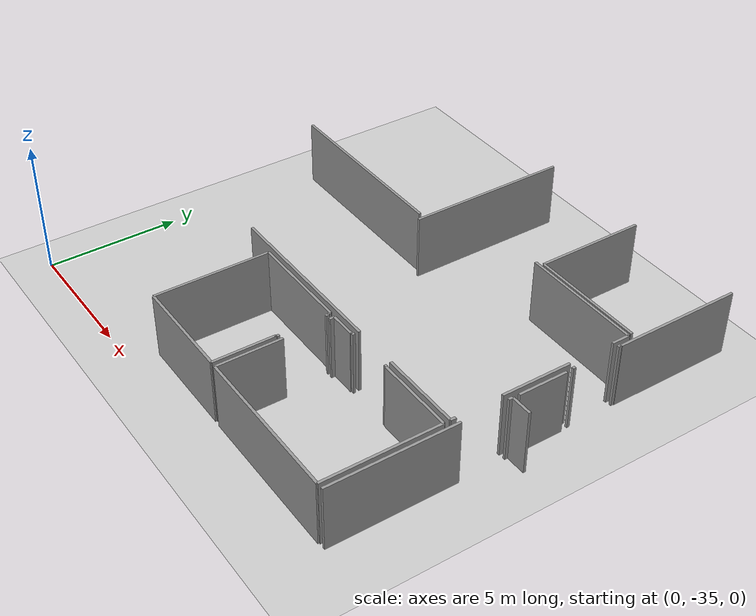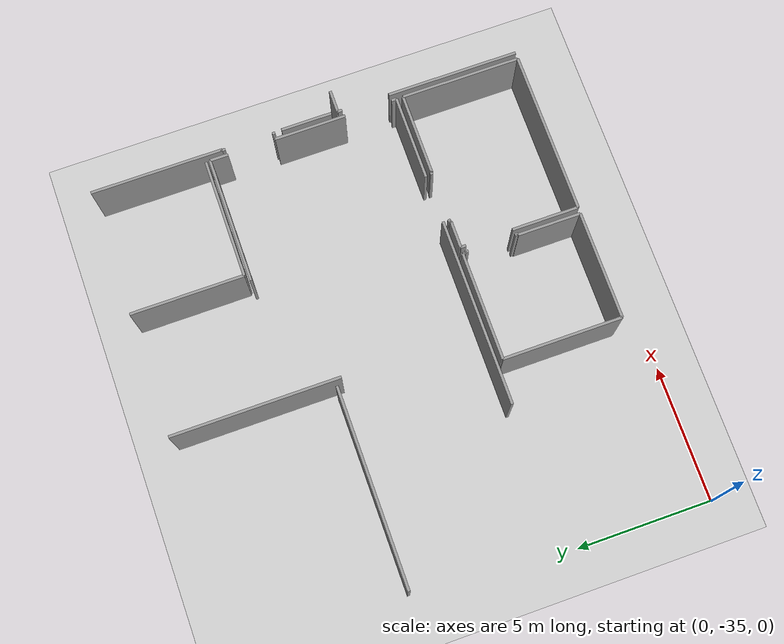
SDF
<sdf version="1.6">
 <world name="default">
  <model name="ground_plane">
   <static>1</static>
   <link name="link">
    <collision name="collision">
     <geometry><plane><normal>0 0 1</normal><size>100 100</size></plane></geometry>
     <surface><friction><ode><mu>100</mu><mu2>50</mu2></ode></friction></surface>
    </collision>
    <visual name="visual">
     <cast_shadows>0</cast_shadows>
     <geometry><plane><normal>0 0 1</normal><size>100 100</size></plane></geometry>
     <material>
      <script><uri>file://media/materials/scripts/gazebo.material</uri><name>Gazebo/Grey</name></script>
     </material>
    </visual>
   </link>
  </model>
  <model name="50041192">
   <static>1</static>
   <link name="Wall_163">
    <collision name="Wall_163_Collision">
     <geometry><box><size>7.26938957096 0.1 2.5</size></box></geometry>
     <pose>3.63469478548 0 1.25 0 0 0</pose>
    </collision>
    <visual name="Wall_163_Visual">
     <pose>3.63469478548 0 1.25 0 0 0</pose>
     <geometry><box><size>7.26938957096 0.1 2.5</size></box></geometry>
     <material>
      <script><uri>file://media/materials/scripts/gazebo.material</uri><name>Gazebo/Grey</name></script>
      <ambient>1 1 1 1</ambient>
     </material>
    </visual>
    <pose>37.4706771886 -57.8536718641 0 0 0 -3.14108570494</pose>
   </link>
   <link name="Wall_176">
    <collision name="Wall_176_Collision">
     <geometry><box><size>4.13950414903 0.1 2.5</size></box></geometry>
     <pose>2.06975207452 0 1.25 0 0 0</pose>
    </collision>
    <visual name="Wall_176_Visual">
     <pose>2.06975207452 0 1.25 0 0 0</pose>
     <geometry><box><size>4.13950414903 0.1 2.5</size></box></geometry>
     <material>
      <script><uri>file://media/materials/scripts/gazebo.material</uri><name>Gazebo/Grey</name></script>
      <ambient>1 1 1 1</ambient>
     </material>
    </visual>
    <pose>42.2174780476 -56.0946844065 0 0 0 1.57079632679</pose>
   </link>
   <link name="Wall_184">
    <collision name="Wall_184_Collision">
     <geometry><box><size>4.39760747073 0.1 2.5</size></box></geometry>
     <pose>2.19880373536 0 1.25 0 0 0</pose>
    </collision>
    <visual name="Wall_184_Visual">
     <pose>2.19880373536 0 1.25 0 0 0</pose>
     <geometry><box><size>4.39760747073 0.1 2.5</size></box></geometry>
     <material>
      <script><uri>file://media/materials/scripts/gazebo.material</uri><name>Gazebo/Grey</name></script>
      <ambient>1 1 1 1</ambient>
     </material>
    </visual>
    <pose>46.6150737677 -56.104850495 0 0 0 3.13928091986</pose>
   </link>
   <link name="Wall_218">
    <collision name="Wall_218_Collision">
     <geometry><box><size>1.86395232105 0.1 2.5</size></box></geometry>
     <pose>0.931976160523 0 1.25 0 0 0</pose>
    </collision>
    <visual name="Wall_218_Visual">
     <pose>0.931976160523 0 1.25 0 0 0</pose>
     <geometry><box><size>1.86395232105 0.1 2.5</size></box></geometry>
     <material>
      <script><uri>file://media/materials/scripts/gazebo.material</uri><name>Gazebo/Grey</name></script>
      <ambient>1 1 1 1</ambient>
     </material>
    </visual>
    <pose>46.8810440573 -60.8630882035 0 0 0 1.57079632679</pose>
   </link>
   <link name="Wall_223">
    <collision name="Wall_223_Collision">
     <geometry><box><size>4.83067108892 0.1 2.5</size></box></geometry>
     <pose>2.41533554446 0 1.25 0 0 0</pose>
    </collision>
    <visual name="Wall_223_Visual">
     <pose>2.41533554446 0 1.25 0 0 0</pose>
     <geometry><box><size>4.83067108892 0.1 2.5</size></box></geometry>
     <material>
      <script><uri>file://media/materials/scripts/gazebo.material</uri><name>Gazebo/Grey</name></script>
      <ambient>1 1 1 1</ambient>
     </material>
    </visual>
    <pose>46.8738007193 -67.8564675384 0 0 0 1.57079632679</pose>
   </link>
   <link name="Wall_224">
    <collision name="Wall_224_Collision">
     <geometry><box><size>0.162022034997 0.1 2.5</size></box></geometry>
     <pose>0.0810110174984 0 1.25 0 0 0</pose>
    </collision>
    <visual name="Wall_224_Visual">
     <pose>0.0810110174984 0 1.25 0 0 0</pose>
     <geometry><box><size>0.162022034997 0.1 2.5</size></box></geometry>
     <material>
      <script><uri>file://media/materials/scripts/gazebo.material</uri><name>Gazebo/Grey</name></script>
      <ambient>1 1 1 1</ambient>
     </material>
    </visual>
    <pose>46.8738007193 -61.2624884043 0 0 0 1.57079632679</pose>
   </link>
   <link name="Wall_225">
    <collision name="Wall_225_Collision">
     <geometry><box><size>0.820149187348 0.1 2.5</size></box></geometry>
     <pose>0.410074593674 0 1.25 0 0 0</pose>
    </collision>
    <visual name="Wall_225_Visual">
     <pose>0.410074593674 0 1.25 0 0 0</pose>
     <geometry><box><size>0.820149187348 0.1 2.5</size></box></geometry>
     <material>
      <script><uri>file://media/materials/scripts/gazebo.material</uri><name>Gazebo/Grey</name></script>
      <ambient>1 1 1 1</ambient>
     </material>
    </visual>
    <pose>46.8738007193 -61.1004663693 0 0 0 0.0</pose>
   </link>
   <link name="Wall_240">
    <collision name="Wall_240_Collision">
     <geometry><box><size>0.109920831586 0.1 2.5</size></box></geometry>
     <pose>0.054960415793 0 1.25 0 0 0</pose>
    </collision>
    <visual name="Wall_240_Visual">
     <pose>0.054960415793 0 1.25 0 0 0</pose>
     <geometry><box><size>0.109920831586 0.1 2.5</size></box></geometry>
     <material>
      <script><uri>file://media/materials/scripts/gazebo.material</uri><name>Gazebo/Grey</name></script>
      <ambient>1 1 1 1</ambient>
     </material>
    </visual>
    <pose>46.8509270202 -58.7496854866 0 0 0 1.57079632679</pose>
   </link>
   <link name="Wall_241">
    <collision name="Wall_241_Collision">
     <geometry><box><size>0.111445744857 0.1 2.5</size></box></geometry>
     <pose>0.0557228724283 0 1.25 0 0 0</pose>
    </collision>
    <visual name="Wall_241_Visual">
     <pose>0.0557228724283 0 1.25 0 0 0</pose>
     <geometry><box><size>0.111445744857 0.1 2.5</size></box></geometry>
     <material>
      <script><uri>file://media/materials/scripts/gazebo.material</uri><name>Gazebo/Grey</name></script>
      <ambient>1 1 1 1</ambient>
     </material>
    </visual>
    <pose>46.8509270202 -56.8937389603 0 0 0 1.57079632679</pose>
   </link>
   <link name="Wall_242">
    <collision name="Wall_242_Collision">
     <geometry><box><size>0.0209675574702 0.1 2.5</size></box></geometry>
     <pose>0.0104837787351 0 1.25 0 0 0</pose>
    </collision>
    <visual name="Wall_242_Visual">
     <pose>0.0104837787351 0 1.25 0 0 0</pose>
     <geometry><box><size>0.0209675574702 0.1 2.5</size></box></geometry>
     <material>
      <script><uri>file://media/materials/scripts/gazebo.material</uri><name>Gazebo/Grey</name></script>
      <ambient>1 1 1 1</ambient>
     </material>
    </visual>
    <pose>46.8509270202 -56.7822932154 0 0 0 0.0</pose>
   </link>
   <link name="Wall_243">
    <collision name="Wall_243_Collision">
     <geometry><box><size>4.82673344258 0.1 2.5</size></box></geometry>
     <pose>2.41336672129 0 1.25 0 0 0</pose>
    </collision>
    <visual name="Wall_243_Visual">
     <pose>2.41336672129 0 1.25 0 0 0</pose>
     <geometry><box><size>4.82673344258 0.1 2.5</size></box></geometry>
     <material>
      <script><uri>file://media/materials/scripts/gazebo.material</uri><name>Gazebo/Grey</name></script>
      <ambient>1 1 1 1</ambient>
     </material>
    </visual>
    <pose>46.8718945777 -56.7822932154 0 0 0 1.56995384483</pose>
   </link>
   <link name="Wall_244">
    <collision name="Wall_244_Collision">
     <geometry><box><size>2.45066270189 0.1 2.5</size></box></geometry>
     <pose>1.22533135095 0 1.25 0 0 0</pose>
    </collision>
    <visual name="Wall_244_Visual">
     <pose>1.22533135095 0 1.25 0 0 0</pose>
     <geometry><box><size>2.45066270189 0.1 2.5</size></box></geometry>
     <material>
      <script><uri>file://media/materials/scripts/gazebo.material</uri><name>Gazebo/Grey</name></script>
      <ambient>1 1 1 1</ambient>
     </material>
    </visual>
    <pose>40.6754095028 -67.8621859632 0 0 0 1.57079632679</pose>
   </link>
   <link name="Wall_245">
    <collision name="Wall_245_Collision">
     <geometry><box><size>0.19061415882 0.1 2.5</size></box></geometry>
     <pose>0.0953070794099 0 1.25 0 0 0</pose>
    </collision>
    <visual name="Wall_245_Visual">
     <pose>0.0953070794099 0 1.25 0 0 0</pose>
     <geometry><box><size>0.19061415882 0.1 2.5</size></box></geometry>
     <material>
      <script><uri>file://media/materials/scripts/gazebo.material</uri><name>Gazebo/Grey</name></script>
      <ambient>1 1 1 1</ambient>
     </material>
    </visual>
    <pose>40.6754095028 -63.6834152974 0 0 0 1.57079632679</pose>
   </link>
   <link name="Wall_246">
    <collision name="Wall_246_Collision">
     <geometry><box><size>0.984331516145 0.1 2.5</size></box></geometry>
     <pose>0.492165758073 0 1.25 0 0 0</pose>
    </collision>
    <visual name="Wall_246_Visual">
     <pose>0.492165758073 0 1.25 0 0 0</pose>
     <geometry><box><size>0.984331516145 0.1 2.5</size></box></geometry>
     <material>
      <script><uri>file://media/materials/scripts/gazebo.material</uri><name>Gazebo/Grey</name></script>
      <ambient>1 1 1 1</ambient>
     </material>
    </visual>
    <pose>40.6754095028 -63.4928011386 0 0 0 0.0</pose>
   </link>
   <link name="Wall_247">
    <collision name="Wall_247_Collision">
     <geometry><box><size>0.0341834724817 0.1 2.5</size></box></geometry>
     <pose>0.0170917362408 0 1.25 0 0 0</pose>
    </collision>
    <visual name="Wall_247_Visual">
     <pose>0.0170917362408 0 1.25 0 0 0</pose>
     <geometry><box><size>0.0341834724817 0.1 2.5</size></box></geometry>
     <material>
      <script><uri>file://media/materials/scripts/gazebo.material</uri><name>Gazebo/Grey</name></script>
      <ambient>1 1 1 1</ambient>
     </material>
    </visual>
    <pose>41.6597410189 -63.4928011386 0 0 0 1.57079632679</pose>
   </link>
   <link name="Wall_248">
    <collision name="Wall_248_Collision">
     <geometry><box><size>0.11411434308 0.1 2.5</size></box></geometry>
     <pose>0.05705717154 0 1.25 0 0 0</pose>
    </collision>
    <visual name="Wall_248_Visual">
     <pose>0.05705717154 0 1.25 0 0 0</pose>
     <geometry><box><size>0.11411434308 0.1 2.5</size></box></geometry>
     <material>
      <script><uri>file://media/materials/scripts/gazebo.material</uri><name>Gazebo/Grey</name></script>
      <ambient>1 1 1 1</ambient>
     </material>
    </visual>
    <pose>41.6597410189 -63.4586176661 0 0 0 0.0</pose>
   </link>
   <link name="Wall_249">
    <collision name="Wall_249_Collision">
     <geometry><box><size>0.0974673732098 0.1 2.5</size></box></geometry>
     <pose>0.0487336866049 0 1.25 0 0 0</pose>
    </collision>
    <visual name="Wall_249_Visual">
     <pose>0.0487336866049 0 1.25 0 0 0</pose>
     <geometry><box><size>0.0974673732098 0.1 2.5</size></box></geometry>
     <material>
      <script><uri>file://media/materials/scripts/gazebo.material</uri><name>Gazebo/Grey</name></script>
      <ambient>1 1 1 1</ambient>
     </material>
    </visual>
    <pose>43.5181019913 -63.4586176661 0 0 0 0.0</pose>
   </link>
   <link name="Wall_250">
    <collision name="Wall_250_Collision">
     <geometry><box><size>0.0216029379996 0.1 2.5</size></box></geometry>
     <pose>0.0108014689998 0 1.25 0 0 0</pose>
    </collision>
    <visual name="Wall_250_Visual">
     <pose>0.0108014689998 0 1.25 0 0 0</pose>
     <geometry><box><size>0.0216029379996 0.1 2.5</size></box></geometry>
     <material>
      <script><uri>file://media/materials/scripts/gazebo.material</uri><name>Gazebo/Grey</name></script>
      <ambient>1 1 1 1</ambient>
     </material>
    </visual>
    <pose>43.6155693645 -63.4586176661 0 0 0 -1.57079632679</pose>
   </link>
   <link name="Wall_251">
    <collision name="Wall_251_Collision">
     <geometry><box><size>3.01615137306 0.1 2.5</size></box></geometry>
     <pose>1.50807568653 0 1.25 0 0 0</pose>
    </collision>
    <visual name="Wall_251_Visual">
     <pose>1.50807568653 0 1.25 0 0 0</pose>
     <geometry><box><size>3.01615137306 0.1 2.5</size></box></geometry>
     <material>
      <script><uri>file://media/materials/scripts/gazebo.material</uri><name>Gazebo/Grey</name></script>
      <ambient>1 1 1 1</ambient>
     </material>
    </visual>
    <pose>43.6155693645 -63.4802206041 0 0 0 0.0</pose>
   </link>
   <link name="Wall_252">
    <collision name="Wall_252_Collision">
     <geometry><box><size>4.37319710775 0.1 2.5</size></box></geometry>
     <pose>2.18659855387 0 1.25 0 0 0</pose>
    </collision>
    <visual name="Wall_252_Visual">
     <pose>2.18659855387 0 1.25 0 0 0</pose>
     <geometry><box><size>4.37319710775 0.1 2.5</size></box></geometry>
     <material>
      <script><uri>file://media/materials/scripts/gazebo.material</uri><name>Gazebo/Grey</name></script>
      <ambient>1 1 1 1</ambient>
     </material>
    </visual>
    <pose>46.6317207375 -63.4802206041 0 0 0 -1.57079632679</pose>
   </link>
   <link name="Wall_253">
    <collision name="Wall_253_Collision">
     <geometry><box><size>5.95631768864 0.1 2.5</size></box></geometry>
     <pose>2.97815884432 0 1.25 0 0 0</pose>
    </collision>
    <visual name="Wall_253_Visual">
     <pose>2.97815884432 0 1.25 0 0 0</pose>
     <geometry><box><size>5.95631768864 0.1 2.5</size></box></geometry>
     <material>
      <script><uri>file://media/materials/scripts/gazebo.material</uri><name>Gazebo/Grey</name></script>
      <ambient>1 1 1 1</ambient>
     </material>
    </visual>
    <pose>46.6317207375 -67.8534177119 0 0 0 -3.14012056044</pose>
   </link>
   <link name="Wall_254">
    <collision name="Wall_254_Collision">
     <geometry><box><size>4.36760575909 0.1 2.5</size></box></geometry>
     <pose>2.18380287954 0 1.25 0 0 0</pose>
    </collision>
    <visual name="Wall_254_Visual">
     <pose>2.18380287954 0 1.25 0 0 0</pose>
     <geometry><box><size>4.36760575909 0.1 2.5</size></box></geometry>
     <material>
      <script><uri>file://media/materials/scripts/gazebo.material</uri><name>Gazebo/Grey</name></script>
      <ambient>1 1 1 1</ambient>
     </material>
    </visual>
    <pose>36.4694445503 -67.8496054287 0 0 0 1.57079632679</pose>
   </link>
   <link name="Wall_255">
    <collision name="Wall_255_Collision">
     <geometry><box><size>3.96007268753 0.1 2.5</size></box></geometry>
     <pose>1.98003634377 0 1.25 0 0 0</pose>
    </collision>
    <visual name="Wall_255_Visual">
     <pose>1.98003634377 0 1.25 0 0 0</pose>
     <geometry><box><size>3.96007268753 0.1 2.5</size></box></geometry>
     <material>
      <script><uri>file://media/materials/scripts/gazebo.material</uri><name>Gazebo/Grey</name></script>
      <ambient>1 1 1 1</ambient>
     </material>
    </visual>
    <pose>36.4694445503 -63.4819996696 0 0 0 0.0</pose>
   </link>
   <link name="Wall_256">
    <collision name="Wall_256_Collision">
     <geometry><box><size>0.0939092422452 0.1 2.5</size></box></geometry>
     <pose>0.0469546211226 0 1.25 0 0 0</pose>
    </collision>
    <visual name="Wall_256_Visual">
     <pose>0.0469546211226 0 1.25 0 0 0</pose>
     <geometry><box><size>0.0939092422452 0.1 2.5</size></box></geometry>
     <material>
      <script><uri>file://media/materials/scripts/gazebo.material</uri><name>Gazebo/Grey</name></script>
      <ambient>1 1 1 1</ambient>
     </material>
    </visual>
    <pose>40.4295172379 -63.4819996696 0 0 0 -1.57079632679</pose>
   </link>
   <link name="Wall_257">
    <collision name="Wall_257_Collision">
     <geometry><box><size>0.0360896140699 0.1 2.5</size></box></geometry>
     <pose>0.0180448070349 0 1.25 0 0 0</pose>
    </collision>
    <visual name="Wall_257_Visual">
     <pose>0.0180448070349 0 1.25 0 0 0</pose>
     <geometry><box><size>0.0360896140699 0.1 2.5</size></box></geometry>
     <material>
      <script><uri>file://media/materials/scripts/gazebo.material</uri><name>Gazebo/Grey</name></script>
      <ambient>1 1 1 1</ambient>
     </material>
    </visual>
    <pose>40.4295172379 -63.5759089118 0 0 0 0.0</pose>
   </link>
   <link name="Wall_258">
    <collision name="Wall_258_Collision">
     <geometry><box><size>0.119197387315 0.1 2.5</size></box></geometry>
     <pose>0.0595986936576 0 1.25 0 0 0</pose>
    </collision>
    <visual name="Wall_258_Visual">
     <pose>0.0595986936576 0 1.25 0 0 0</pose>
     <geometry><box><size>0.119197387315 0.1 2.5</size></box></geometry>
     <material>
      <script><uri>file://media/materials/scripts/gazebo.material</uri><name>Gazebo/Grey</name></script>
      <ambient>1 1 1 1</ambient>
     </material>
    </visual>
    <pose>40.4656068519 -63.5759089118 0 0 0 -1.57079632679</pose>
   </link>
   <link name="Wall_259">
    <collision name="Wall_259_Collision">
     <geometry><box><size>0.103821178504 0.1 2.5</size></box></geometry>
     <pose>0.0519105892519 0 1.25 0 0 0</pose>
    </collision>
    <visual name="Wall_259_Visual">
     <pose>0.0519105892519 0 1.25 0 0 0</pose>
     <geometry><box><size>0.103821178504 0.1 2.5</size></box></geometry>
     <material>
      <script><uri>file://media/materials/scripts/gazebo.material</uri><name>Gazebo/Grey</name></script>
      <ambient>1 1 1 1</ambient>
     </material>
    </visual>
    <pose>40.4656068519 -65.4305846772 0 0 0 -1.57079632679</pose>
   </link>
   <link name="Wall_260">
    <collision name="Wall_260_Collision">
     <geometry><box><size>0.0291004282465 0.1 2.5</size></box></geometry>
     <pose>0.0145502141232 0 1.25 0 0 0</pose>
    </collision>
    <visual name="Wall_260_Visual">
     <pose>0.0145502141232 0 1.25 0 0 0</pose>
     <geometry><box><size>0.0291004282465 0.1 2.5</size></box></geometry>
     <material>
      <script><uri>file://media/materials/scripts/gazebo.material</uri><name>Gazebo/Grey</name></script>
      <ambient>1 1 1 1</ambient>
     </material>
    </visual>
    <pose>40.4656068519 -65.5344058557 0 0 0 3.14159265359</pose>
   </link>
   <link name="Wall_261">
    <collision name="Wall_261_Collision">
     <geometry><box><size>2.31558080134 0.1 2.5</size></box></geometry>
     <pose>1.15779040067 0 1.25 0 0 0</pose>
    </collision>
    <visual name="Wall_261_Visual">
     <pose>1.15779040067 0 1.25 0 0 0</pose>
     <geometry><box><size>2.31558080134 0.1 2.5</size></box></geometry>
     <material>
      <script><uri>file://media/materials/scripts/gazebo.material</uri><name>Gazebo/Grey</name></script>
      <ambient>1 1 1 1</ambient>
     </material>
    </visual>
    <pose>40.4365064237 -65.5344058557 0 0 0 -1.57079632679</pose>
   </link>
   <link name="Wall_262">
    <collision name="Wall_262_Collision">
     <geometry><box><size>3.96706189167 0.1 2.5</size></box></geometry>
     <pose>1.98353094584 0 1.25 0 0 0</pose>
    </collision>
    <visual name="Wall_262_Visual">
     <pose>1.98353094584 0 1.25 0 0 0</pose>
     <geometry><box><size>3.96706189167 0.1 2.5</size></box></geometry>
     <material>
      <script><uri>file://media/materials/scripts/gazebo.material</uri><name>Gazebo/Grey</name></script>
      <ambient>1 1 1 1</ambient>
     </material>
    </visual>
    <pose>40.4365064237 -67.849986657 0 0 0 3.14149655519</pose>
   </link>
   <link name="Wall_303">
    <collision name="Wall_303_Collision">
     <geometry><box><size>6.1422235777 0.1 2.5</size></box></geometry>
     <pose>3.07111178885 0 1.25 0 0 0</pose>
    </collision>
    <visual name="Wall_303_Visual">
     <pose>3.07111178885 0 1.25 0 0 0</pose>
     <geometry><box><size>6.1422235777 0.1 2.5</size></box></geometry>
     <material>
      <script><uri>file://media/materials/scripts/gazebo.material</uri><name>Gazebo/Grey</name></script>
      <ambient>1 1 1 1</ambient>
     </material>
    </visual>
    <pose>37.7121217897 -58.0940998564 0 0 0 1.57079632679</pose>
   </link>
   <link name="Wall_307">
    <collision name="Wall_307_Collision">
     <geometry><box><size>4.65657682386 0.1 2.5</size></box></geometry>
     <pose>2.32828841193 0 1.25 0 0 0</pose>
    </collision>
    <visual name="Wall_307_Visual">
     <pose>2.32828841193 0 1.25 0 0 0</pose>
     <geometry><box><size>4.65657682386 0.1 2.5</size></box></geometry>
     <material>
      <script><uri>file://media/materials/scripts/gazebo.material</uri><name>Gazebo/Grey</name></script>
      <ambient>1 1 1 1</ambient>
     </material>
    </visual>
    <pose>41.9715857827 -56.2574688981 0 0 0 0.0</pose>
   </link>
   <link name="Wall_308">
    <collision name="Wall_308_Collision">
     <geometry><box><size>0.667276631975 0.1 2.5</size></box></geometry>
     <pose>0.333638315987 0 1.25 0 0 0</pose>
    </collision>
    <visual name="Wall_308_Visual">
     <pose>0.333638315987 0 1.25 0 0 0</pose>
     <geometry><box><size>0.667276631975 0.1 2.5</size></box></geometry>
     <material>
      <script><uri>file://media/materials/scripts/gazebo.material</uri><name>Gazebo/Grey</name></script>
      <ambient>1 1 1 1</ambient>
     </material>
    </visual>
    <pose>46.6281626066 -56.2574688981 0 0 0 -1.57079632679</pose>
   </link>
   <link name="Wall_309">
    <collision name="Wall_309_Collision">
     <geometry><box><size>2.62450281474 0.1 2.5</size></box></geometry>
     <pose>1.31225140737 0 1.25 0 0 0</pose>
    </collision>
    <visual name="Wall_309_Visual">
     <pose>1.31225140737 0 1.25 0 0 0</pose>
     <geometry><box><size>2.62450281474 0.1 2.5</size></box></geometry>
     <material>
      <script><uri>file://media/materials/scripts/gazebo.material</uri><name>Gazebo/Grey</name></script>
      <ambient>1 1 1 1</ambient>
     </material>
    </visual>
    <pose>46.6281626066 -58.6711524532 0 0 0 -1.57079632679</pose>
   </link>
   <link name="Wall_310">
    <collision name="Wall_310_Collision">
     <geometry><box><size>0.192266148196 0.1 2.5</size></box></geometry>
     <pose>0.0961330740981 0 1.25 0 0 0</pose>
    </collision>
    <visual name="Wall_310_Visual">
     <pose>0.0961330740981 0 1.25 0 0 0</pose>
     <geometry><box><size>0.192266148196 0.1 2.5</size></box></geometry>
     <material>
      <script><uri>file://media/materials/scripts/gazebo.material</uri><name>Gazebo/Grey</name></script>
      <ambient>1 1 1 1</ambient>
     </material>
    </visual>
    <pose>46.6281626066 -63.0414268105 0 0 0 -1.57079632679</pose>
   </link>
   <link name="Wall_311">
    <collision name="Wall_311_Collision">
     <geometry><box><size>3.11984547546 0.1 2.5</size></box></geometry>
     <pose>1.55992273773 0 1.25 0 0 0</pose>
    </collision>
    <visual name="Wall_311_Visual">
     <pose>1.55992273773 0 1.25 0 0 0</pose>
     <geometry><box><size>3.11984547546 0.1 2.5</size></box></geometry>
     <material>
      <script><uri>file://media/materials/scripts/gazebo.material</uri><name>Gazebo/Grey</name></script>
      <ambient>1 1 1 1</ambient>
     </material>
    </visual>
    <pose>46.6281626066 -63.2336929587 0 0 0 3.14159265359</pose>
   </link>
   <link name="Wall_312">
    <collision name="Wall_312_Collision">
     <geometry><box><size>6.85778912991 0.1 2.5</size></box></geometry>
     <pose>3.42889456495 0 1.25 0 0 0</pose>
    </collision>
    <visual name="Wall_312_Visual">
     <pose>3.42889456495 0 1.25 0 0 0</pose>
     <geometry><box><size>6.85778912991 0.1 2.5</size></box></geometry>
     <material>
      <script><uri>file://media/materials/scripts/gazebo.material</uri><name>Gazebo/Grey</name></script>
      <ambient>1 1 1 1</ambient>
     </material>
    </visual>
    <pose>41.7558105549 -63.2336929587 0 0 0 3.14159265359</pose>
   </link>
   <pose>-29.75 33.9121859632 0 0 0 0</pose>
  </model>
 </world>
</sdf>
